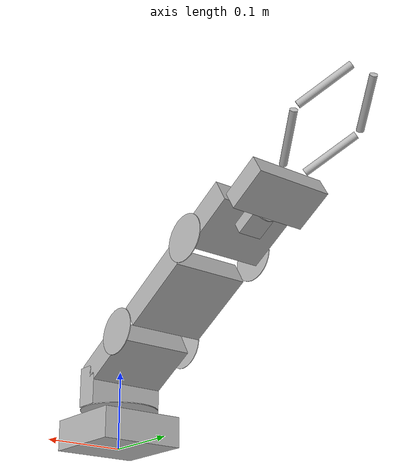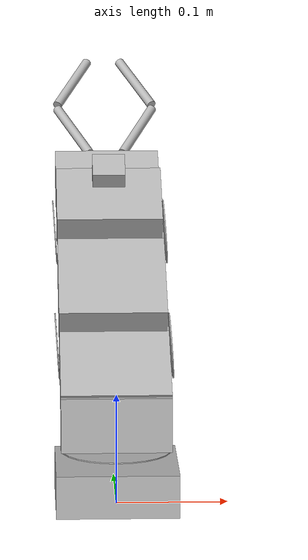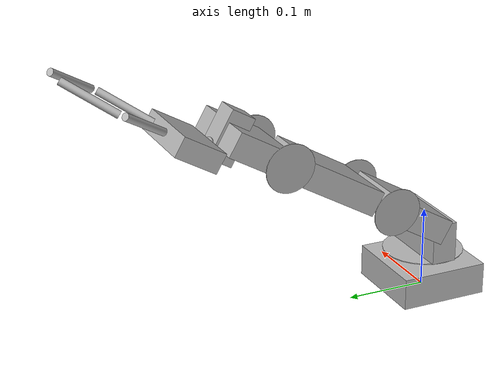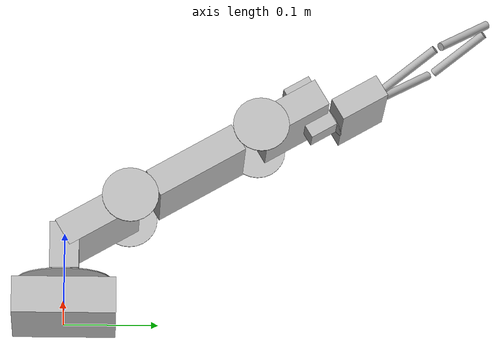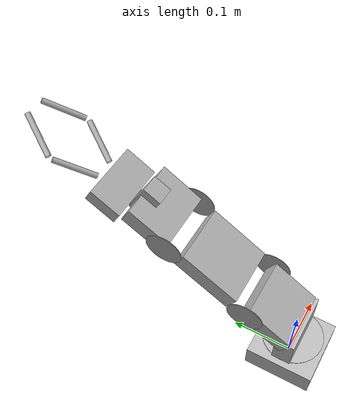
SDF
<?xml version='1.0'?>
<sdf version='1.5'>
  <model name="hri_arm">
  <static>false</static>
<link name='Base'>
            <pose>0 0 .0195 0 0 0</pose>
	<inertial>
        <mass>300.0</mass>
        <pose>0 0 0 0 0 0</pose>
        <inertia>
          <ixx>0.5</ixx>
          <iyy>1.0</iyy>
          <izz>0.1</izz>
        </inertia>
      </inertial>
       <collision name='collision'>
              <geometry>
                <box>
                  <size>.11 .11 .039</size>
                </box>
              </geometry>
            </collision>

    <visual name='visual'>
              <geometry>
                <box>
                  <size>.11 .11 .039</size>
                </box>
              </geometry>
            </visual>
	</link>
  <link name="First_joint">
        <pose>0 0 0.0495 0 0 0</pose>
        <collision name="collision">
          <geometry>
            <cylinder>
              <radius>.05</radius>
              <length>.001</length>
            </cylinder>
          </geometry>
        </collision>
        <visual name="visual">
          <geometry>
            <cylinder>
              <radius>.05</radius>
              <length>.001</length>
            </cylinder>
          </geometry>
        </visual>

	<collision name="collision2">
	<pose>0 0 0.0255 0 0 0</pose>
          <geometry>
            <box>
              <size>.1 .031 .05</size>
           </box>
           </geometry>
         </collision>
        <visual name="visual2">
	<pose>0 0 0.0255 0 0 0</pose>
          <geometry>
                <box>
                  <size>.1 .031 .05</size>
                </box>
              </geometry>
            </visual>

	<collision name="collision3">
	<pose>0 0.0346 0.060 0.5236 0 0</pose>
          <geometry>
            <box>
              <size>.1 .085 .031</size>
           </box>
           </geometry>
         </collision>
        <visual name="visual3">
	<pose>0 0.0346 0.060 0.5236 0 0</pose>
          <geometry>
                <box>
                  <size>.1 .085 .031</size>
                </box>
              </geometry>
            </visual>
      </link>

<link name='Second_joint'>
         <pose>0 0.0692 0.1295 0 0 0</pose>
        <collision name="collision">
	<pose>-0.052 0 0 0 1.507 0</pose>
          <geometry>
            <cylinder>
              <radius>.03</radius>
              <length>.001</length>
            </cylinder>
          </geometry>
        </collision>
        <visual name="visual">
	<pose>-0.052 0 0 0 1.507 0</pose>
          <geometry>
            <cylinder>
              <radius>.03</radius>
              <length>.001</length>
            </cylinder>
          </geometry>
        </visual>
 	<collision name="collision2">
	<pose>0.052 0.0 0 0 1.507 0</pose>
          <geometry>
            <cylinder>
              <radius>.03</radius>
              <length>.001</length>
            </cylinder>
          </geometry>
        </collision>
        <visual name="visual2">
	<pose>0.052 0.0 0.0 0 1.507 0</pose>
          <geometry>
            <cylinder>
              <radius>.03</radius>
              <length>.001</length>
            </cylinder>
          </geometry>
        </visual>
       <collision name="collision3">
	<pose>0.0 0.0692 0.0395 0.5236 0 0</pose>
	<geometry>
            <box>
              <size>.1 .104 .031</size>
           </box>
           </geometry>
         </collision>
        <visual name="visual3">
         <pose>0.0 0.0692 0.0395 0.5236 0 0</pose>
          <geometry>
                <box>
                  <size>.1 .104 .031</size>
                </box>
              </geometry>
            </visual>
       <collision name="collision4">
	<pose>-0.052 0.1384 0.079 0 1.507 0</pose>
          <geometry>
            <cylinder>
              <radius>.03</radius>
              <length>.001</length>
            </cylinder>
          </geometry>
        </collision>
        <visual name="visual4">
	<pose>-0.052 0.1384 0.079 0 1.507 0</pose>
          <geometry>
            <cylinder>
              <radius>.03</radius>
              <length>.001</length>
            </cylinder>
          </geometry>
        </visual>
       <collision name="collision5">
	<pose>0.052 0.1384 0.079 0 1.507 0</pose>
          <geometry>
            <cylinder>
              <radius>.03</radius>
              <length>.001</length>
            </cylinder>
          </geometry>
        </collision>
        <visual name="visual5">
	<pose>0.052 0.1384 0.079 0 1.507 0</pose>
          <geometry>
            <cylinder>
              <radius>.03</radius>
              <length>.001</length>
            </cylinder>
          </geometry>
        </visual>
      </link>
   <link name='Third_joint'>
            <pose>0 0.2400 0.2273 0.5236 0 0</pose>

            <collision name='collision'>
		<pose>0 0 0 0 0 0</pose>
              <geometry>
                <box>
                  <size>.1 .075 .031</size>
                </box>
              </geometry>
            </collision>

            <visual name='visual'>
             <pose>0 0 0 0 0 0</pose>
              <geometry>
                <box>
                  <size>.1 .075 .031</size>
                </box>
              </geometry>
            </visual>
          <collision name='collision2'>
		<pose>0 0.025 0 0 0 0</pose>
              <geometry>
                <box>
                  <size>.031 .031 .051</size>
                </box>
              </geometry>
            </collision>

            <visual name='visual2'>
             <pose>0 0.025 0 0 0 0</pose>
              <geometry>
                <box>
                  <size>.031 .031 .061</size>
                </box>
              </geometry>
            </visual>
      </link>
  <link name='Fourth_joint'>
         <pose>0 0.2778 0.2435 0 0 0</pose>

        <collision name="collision">
          <pose>0 0.01 -0.017 -1.0472 0 0</pose>
          <geometry>
            <cylinder>
              <radius>.015</radius>
              <length>.001</length>
            </cylinder>
          </geometry>
        </collision>
        <visual name="visual">
          <pose>0 0.01 -0.017 -1.0472 0 0</pose>
          <geometry>
            <cylinder>
              <radius>.015</radius>
              <length>.001</length>
            </cylinder>
          </geometry>
         </visual>
            <collision name='collision2'>
	     <pose>0 0.035 -0.003 0.5236 0 0</pose>
              <geometry>
                <box>
                  <size>.1 .055 .0325</size>
                </box>
              </geometry>
            </collision>

            <visual name='visual2'>
              <pose>0 0.035 -0.003 0.5236 0 0</pose>
               <geometry>
                <box>
                  <size>.1 .055 .025</size>
                </box>
              </geometry>
            </visual>
	</link>

    <link name='Finger_left'>
         <pose>0 0.3778 0.2435 0 0 0</pose>

        <collision name="collision">
          <pose>0.0315 -0.01 0.035 -1.0471 0 -0.5236</pose>
          <geometry>
            <cylinder>
              <radius>.0015</radius>
              <length>.07</length>
            </cylinder>
          </geometry>
        </collision>
        <visual name="visual">
          <pose>0.0315 -0.01 0.035 -1.0471 0 -0.5236</pose>
          <geometry>
            <cylinder>
              <radius>.0045</radius>
              <length>.07</length>
            </cylinder>
          </geometry>
         </visual>
         <collision name="collision2">
          <pose>0.0315 0.0486 0.073 -1.0471 0 0.5236</pose>
          <geometry>
            <cylinder>
              <radius>.0015</radius>
              <length>.07</length>
            </cylinder>
          </geometry>
        </collision>
        <visual name="visual2">
          <pose>0.0315 0.0486 0.073 -1.0471 0 0.5236</pose>
          <geometry>
            <cylinder>
              <radius>.0045</radius>
              <length>.07</length>
            </cylinder>
          </geometry>
         </visual>
	</link>
     <link name='Finger_right'>
         <pose>0 0.3778 0.2435 0 0 0</pose>

        <collision name="collision">
          <pose>-0.0315 -0.01 0.035 -1.0471 0 0.5236</pose>
          <geometry>
            <cylinder>
              <radius>.0015</radius>
              <length>.07</length>
            </cylinder>
          </geometry>
        </collision>
        <visual name="visual">
          <pose>-0.0315 -0.01 0.035 -1.0471 0 0.5236</pose>
          <geometry>
            <cylinder>
              <radius>.0045</radius>
              <length>.07</length>
            </cylinder>
          </geometry>
         </visual>
         <collision name="collision2">
          <pose>-0.0315 0.0486 0.073 -1.0471 0 -0.5236</pose>
          <geometry>
            <cylinder>
              <radius>.0015</radius>
              <length>.07</length>
            </cylinder>
          </geometry>
        </collision>
        <visual name="visual2">
          <pose>-0.0315 0.0486 0.073 -1.0471 0 -0.5236</pose>
          <geometry>
            <cylinder>
              <radius>.0045</radius>
              <length>.07</length>
            </cylinder>
          </geometry>
         </visual>
	</link>

      <joint type="revolute" name="base_hinge">
        <pose>0 0 0.05 0 0 0</pose>
        <child>First_joint</child>
        <parent>Base</parent>
        <axis>
          <xyz>0 0 1</xyz>
        </axis>
      </joint>

     <joint type="revolute" name="First_joint_hinge">
         <pose>0 0 0 0 0 0</pose>
        <child>Second_joint</child>
        <parent>First_joint</parent>
        <axis>
                <limit>
                    <lower>-0.4</lower>
                    <upper>0.5</upper>
                </limit>
          <xyz>1 0 0</xyz>
        </axis>
      </joint>
    <joint type="revolute" name="Second_joint_hinge">
        <pose>0 -0.032 -0.0188 0.5236 0 0</pose>
        <child>Third_joint</child>
        <parent>Second_joint</parent>
        <axis>
                 <limit>
                    <lower>-0.4</lower>
                    <upper>0.5</upper>
                </limit>
          <xyz>1 0 0</xyz>
        </axis>
      </joint>

    <joint type="revolute" name="Third_joint_hinge">
        <pose>0 -0.02 -0.04 0.5236 0 0</pose>
        <child>Fourth_joint</child>
        <parent>Third_joint</parent>
        <axis>
          <xyz>0 1.73 1</xyz>
        </axis>
      </joint>
      <joint type="revolute" name="right_finger_hinge">
        <pose>0 -0.05 0 0.5236 0 0</pose>
        <child>Finger_right</child>
        <parent>Fourth_joint</parent>
        <axis>
                <limit>
                    <lower>-0.4</lower>
                    <upper>0.0</upper>
                </limit>
          <xyz>0 1 -1.73</xyz>
        </axis>
      </joint>
      <joint type="revolute" name="left_finger_hinge">
        <pose>0 -0.05 0 0.5236 0 0</pose>
        <child>Finger_left</child>
        <parent>Fourth_joint</parent>
        <axis>
               <limit>
                    <lower>0.0</lower>
                    <upper>0.4</upper>
               </limit>
          <xyz>0 1 -1.73</xyz>
        </axis>
      </joint>
  </model>
</sdf>
